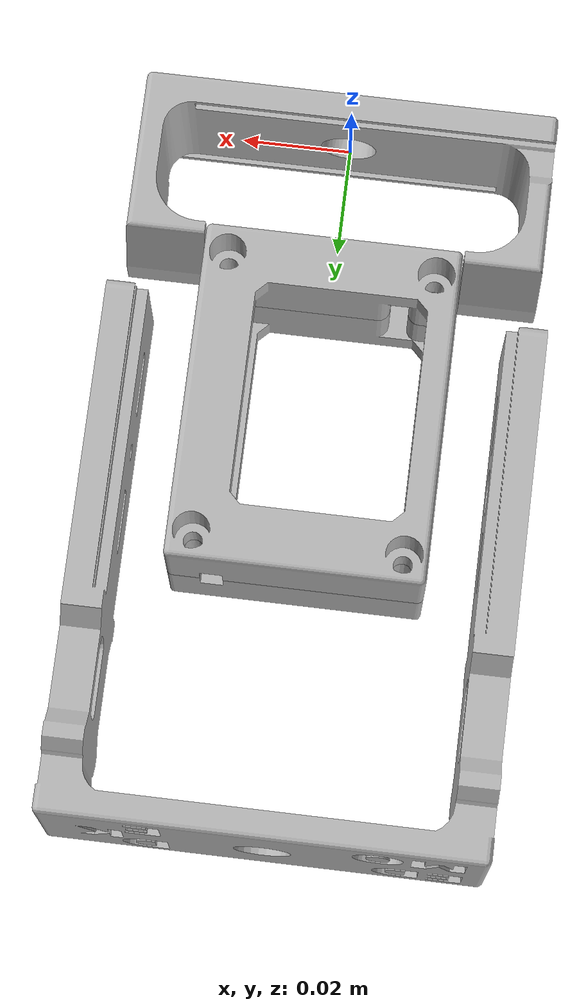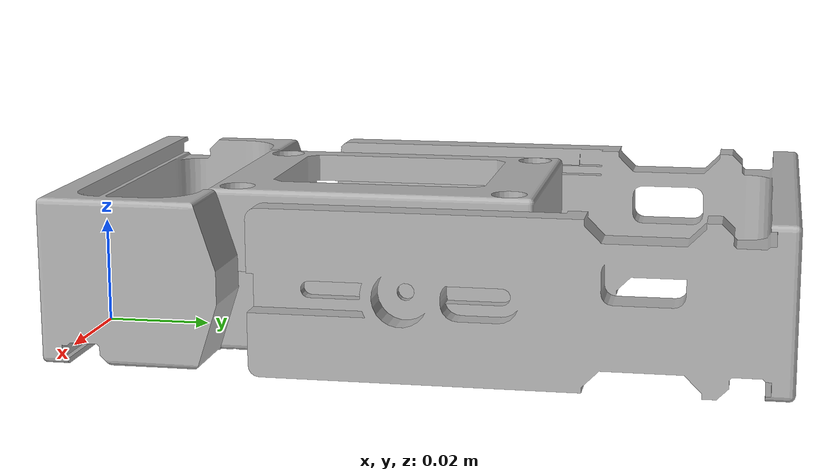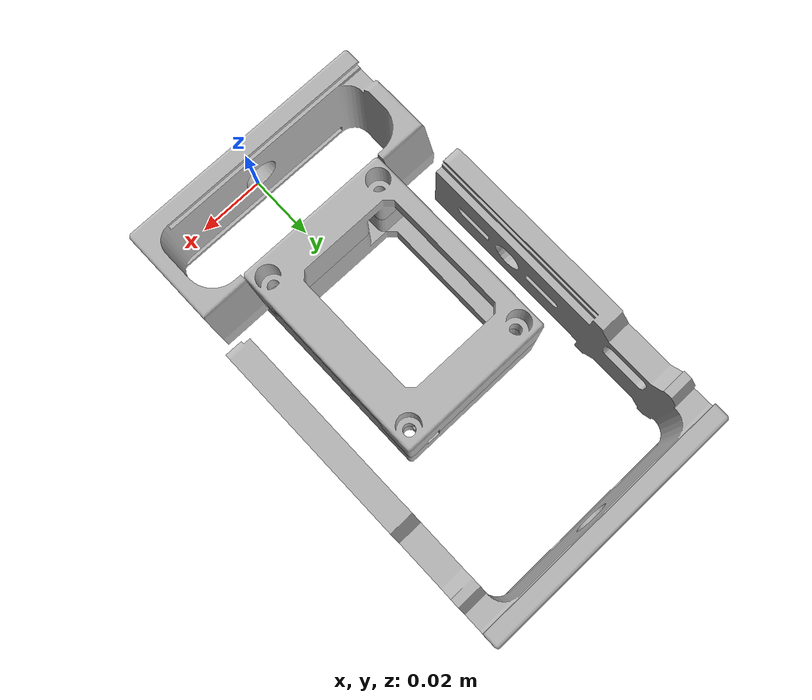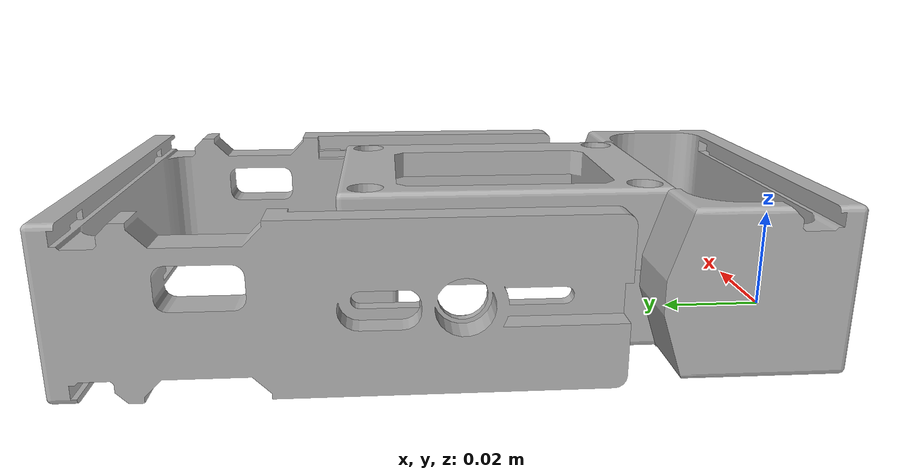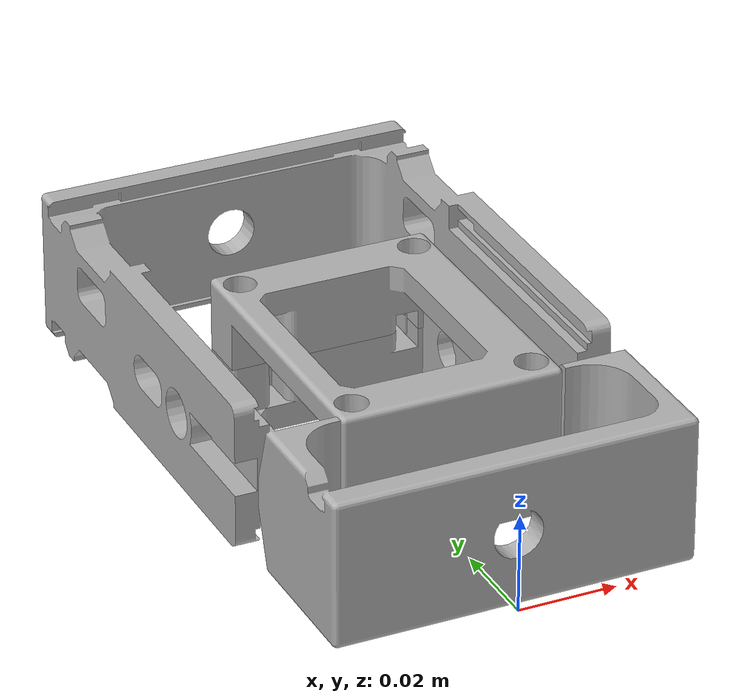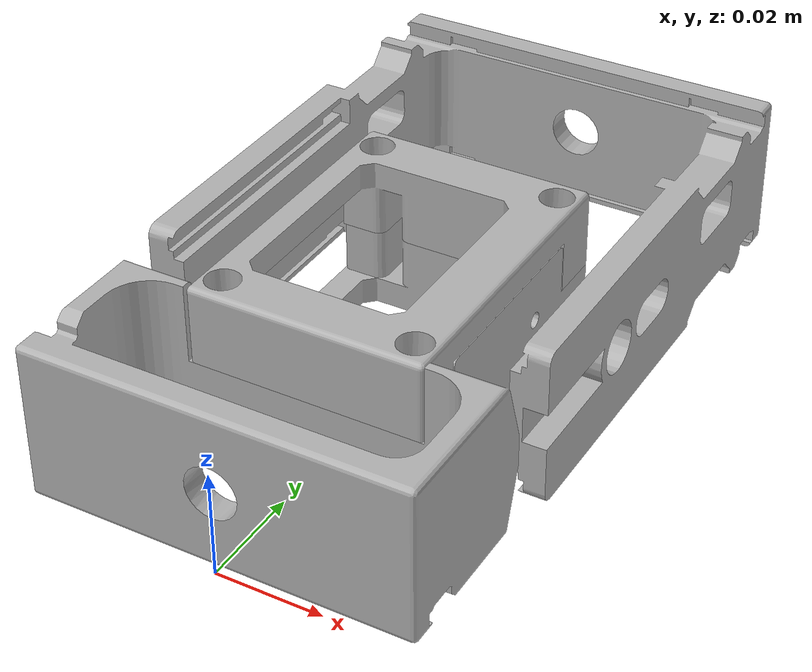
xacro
<?xml version="1.0" ?>
<robot name="edmo_assembly" xmlns:xacro="http://www.ros.org/wiki/xacro">

<xacro:include filename="$(find edmo_assembly_description)/urdf/materials.xacro" />
<xacro:include filename="$(find edmo_assembly_description)/urdf/edmo_assembly.trans" />
<xacro:include filename="$(find edmo_assembly_description)/urdf/edmo_assembly.gazebo" />
<link name="base_link">
  <inertial>
    <origin xyz="0.0023065695021034353 0.033691720135630446 0.012783324748844338" rpy="0 0 0"/>
    <mass value="0.03847845253485034"/>
    <inertia ixx="3.3e-05" iyy="2.2e-05" izz="4.9e-05" ixy="-2e-06" iyz="3e-06" ixz="-0.0"/>
  </inertial>
  <visual>
    <origin xyz="0 0 0" rpy="0 0 0"/>
    <geometry>
      <mesh filename="package://edmo_assembly_description/meshes/base_link.stl" scale="0.001 0.001 0.001"/>
    </geometry>
    <material name="silver"/>
  </visual>
  <collision>
    <origin xyz="0 0 0" rpy="0 0 0"/>
    <geometry>
      <mesh filename="package://edmo_assembly_description/meshes/base_link.stl" scale="0.001 0.001 0.001"/>
    </geometry>
  </collision>
</link>

<link name="cover_1_1">
  <inertial>
    <origin xyz="-0.01692979747824099 -0.02470422851834657 0.008505653303175383" rpy="0 0 0"/>
    <mass value="0.014555566232575165"/>
    <inertia ixx="8e-06" iyy="3e-06" izz="1e-05" ixy="0.0" iyz="-0.0" ixz="-0.0"/>
  </inertial>
  <visual>
    <origin xyz="-0.018186 -0.082013 -0.016112" rpy="0 0 0"/>
    <geometry>
      <mesh filename="package://edmo_assembly_description/meshes/cover_1_1.stl" scale="0.001 0.001 0.001"/>
    </geometry>
    <material name="silver"/>
  </visual>
  <collision>
    <origin xyz="-0.018186 -0.082013 -0.016112" rpy="0 0 0"/>
    <geometry>
      <mesh filename="package://edmo_assembly_description/meshes/cover_1_1.stl" scale="0.001 0.001 0.001"/>
    </geometry>
  </collision>
</link>

<link name="arm_1_1">
  <inertial>
    <origin xyz="0.02261233759672383 0.023394700602238833 -0.05118896256969527" rpy="0 0 0"/>
    <mass value="0.03728860045356832"/>
    <inertia ixx="3.7e-05" iyy="4.1e-05" izz="7.3e-05" ixy="-0.0" iyz="0.0" ixz="-0.0"/>
  </inertial>
  <visual>
    <origin xyz="0.0225 -0.073176 -0.067176" rpy="0 0 0"/>
    <geometry>
      <mesh filename="package://edmo_assembly_description/meshes/arm_1_1.stl" scale="0.001 0.001 0.001"/>
    </geometry>
    <material name="silver"/>
  </visual>
  <collision>
    <origin xyz="0.0225 -0.073176 -0.067176" rpy="0 0 0"/>
    <geometry>
      <mesh filename="package://edmo_assembly_description/meshes/arm_1_1.stl" scale="0.001 0.001 0.001"/>
    </geometry>
  </collision>
</link>

<joint name="Rigid4" type="fixed">
  <origin xyz="0.018186 0.082013 0.016112" rpy="0 0 0"/>
  <parent link="base_link"/>
  <child link="cover_1_1"/>
</joint>

<joint name="Rev5" type="continuous">
  <origin xyz="-0.0225 0.073176 0.067176" rpy="0 0 0"/>
  <parent link="base_link"/>
  <child link="arm_1_1"/>
  <axis xyz="-1.0 -0.0 0.0"/>
</joint>

</robot>

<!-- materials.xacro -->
<robot name="edmo_assembly" xmlns:xacro="http://www.ros.org/wiki/xacro" >

<material name="silver">
  <color rgba="0.700 0.700 0.700 1.000"/>
</material>

</robot>

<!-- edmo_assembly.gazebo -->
<robot name="edmo_assembly" xmlns:xacro="http://www.ros.org/wiki/xacro" >

<xacro:property name="body_color" value="Gazebo/Silver" />

<gazebo>
  <plugin name="control" filename="libgazebo_ros_control.so"/>
</gazebo>
<gazebo reference="base_link">
  <material>${body_color}</material>
  <mu1>0.2</mu1>
  <mu2>0.2</mu2>
  <selfCollide>true</selfCollide>
  <gravity>true</gravity>
</gazebo>

<gazebo reference="cover_1_1">
  <material>${body_color}</material>
  <mu1>0.2</mu1>
  <mu2>0.2</mu2>
  <selfCollide>true</selfCollide>
</gazebo>

<gazebo reference="arm_1_1">
  <material>${body_color}</material>
  <mu1>0.2</mu1>
  <mu2>0.2</mu2>
  <selfCollide>true</selfCollide>
</gazebo>

</robot>
